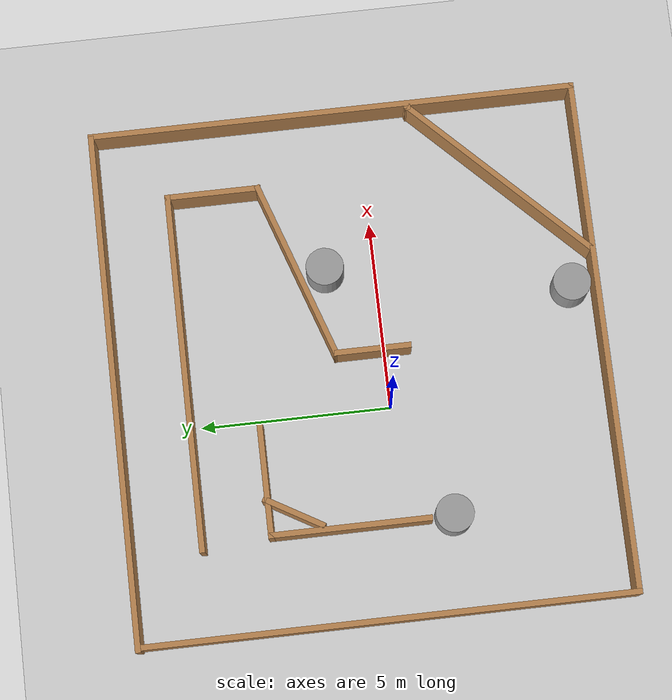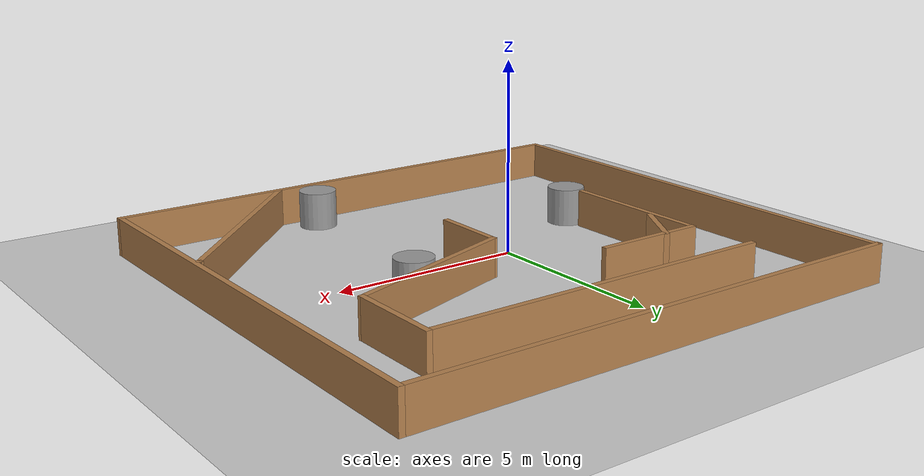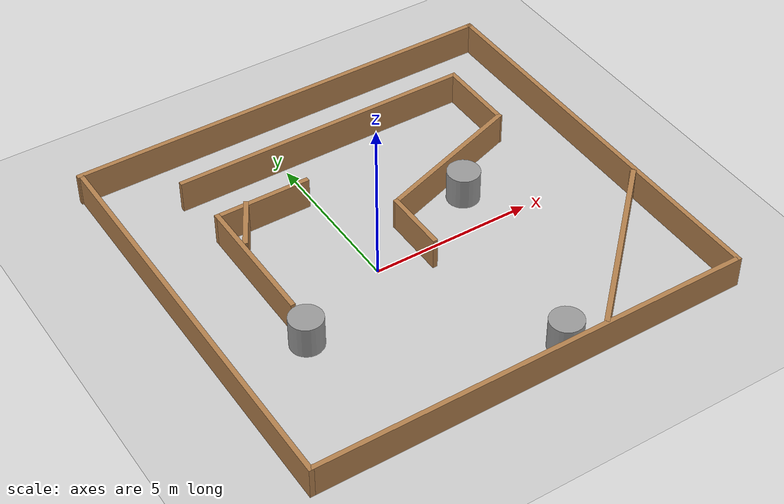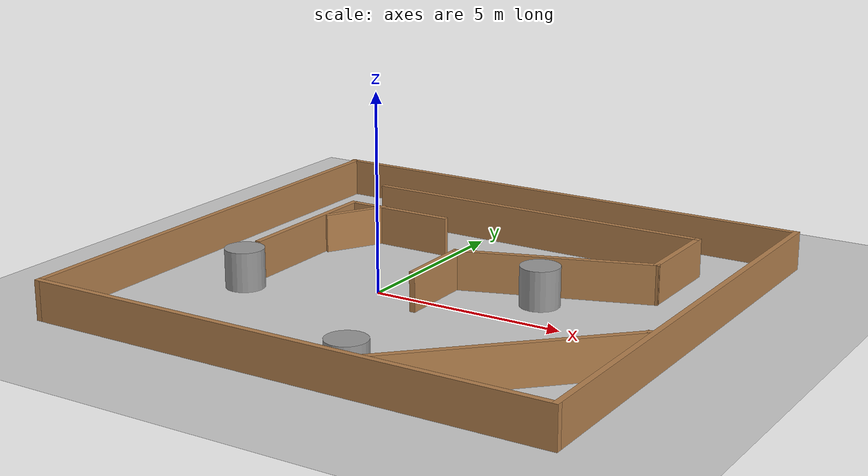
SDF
<sdf version="1.7">
 <world name="default">
  <light name="sun" type="directional">
   <pose>0 0 10 0 -0 0</pose>
   <diffuse>0.8 0.8 0.8 1</diffuse>
   <specular>0.2 0.2 0.2 1</specular>
   <attenuation>
    <range>1000</range>
    <constant>0.9</constant>
    <linear>0.01</linear>
    <quadratic>0.001</quadratic>
   </attenuation>
   <direction>-0.5 0.1 -0.9</direction>
   <spot><inner_angle>0</inner_angle><outer_angle>0</outer_angle><falloff>0</falloff></spot>
  </light>
  <model name="ground_plane">
   <static>1</static>
   <link name="link">
    <collision name="collision">
     <geometry><plane><normal>0 0 1</normal><size>100 100</size></plane></geometry>
     <surface>
      <contact><collide_bitmask>65535</collide_bitmask></contact>
      <friction><ode><mu>100</mu><mu2>50</mu2></ode></friction>
     </surface>
    </collision>
    <visual name="visual">
     <cast_shadows>0</cast_shadows>
     <geometry><plane><normal>0 0 1</normal><size>100 100</size></plane></geometry>
     <material>
      <script><uri>file://media/materials/scripts/gazebo.material</uri><name>Gazebo/Grey</name></script>
     </material>
    </visual>
   </link>
  </model>
  <gravity>0 0 -9.8</gravity>
  <magnetic_field>6e-06 2.3e-05 -4.2e-05</magnetic_field>
  <atmosphere type="adiabatic"/>
  <physics type="ode">
   <max_step_size>0.001</max_step_size>
   <real_time_factor>1</real_time_factor>
   <real_time_update_rate>1000</real_time_update_rate>
  </physics>
  <scene><ambient>0.4 0.4 0.4 1</ambient><background>0.7 0.7 0.7 1</background><shadows>1</shadows></scene>
  <audio><device>default</device></audio>
  <spherical_coordinates>
   <surface_model>EARTH_WGS84</surface_model>
   <latitude_deg>0</latitude_deg>
   <longitude_deg>0</longitude_deg>
   <elevation>0</elevation>
   <heading_deg>0</heading_deg>
  </spherical_coordinates>
  <model name="mac">
   <pose>1.18 0.678 0 0 -0 0</pose>
   <link name="Wall_0">
    <collision name="Wall_0_Collision">
     <geometry><box><size>13 0.15 1</size></box></geometry>
     <pose>0 0 0.5 0 -0 0</pose>
    </collision>
    <visual name="Wall_0_Visual">
     <pose>0 0 0.5 0 -0 0</pose>
     <geometry><box><size>13 0.15 1</size></box></geometry>
     <material>
      <script><uri>file://media/materials/scripts/gazebo.material</uri><name>Gazebo/Wood</name></script>
      <ambient>1 1 1 1</ambient>
     </material>
     <meta><layer>0</layer></meta>
    </visual>
    <pose>6.785 0 0 0 -0 -1.5708</pose>
   </link>
   <link name="Wall_1">
    <collision name="Wall_1_Collision">
     <geometry><box><size>13.674 0.15 1</size></box></geometry>
     <pose>0 0 0.5 0 -0 0</pose>
    </collision>
    <visual name="Wall_1_Visual">
     <pose>0 0 0.5 0 -0 0</pose>
     <geometry><box><size>13.674 0.15 1</size></box></geometry>
     <material>
      <script><uri>file://media/materials/scripts/gazebo.material</uri><name>Gazebo/Wood</name></script>
      <ambient>1 1 1 1</ambient>
     </material>
     <meta><layer>0</layer></meta>
    </visual>
    <pose>0.022999 -6.425 0 0 -0 3.14159</pose>
   </link>
   <link name="Wall_11">
    <collision name="Wall_11_Collision">
     <geometry><box><size>3 0.15 1</size></box></geometry>
     <pose>0 0 0.5 0 -0 0</pose>
    </collision>
    <visual name="Wall_11_Visual">
     <pose>0 0 0.5 0 -0 0</pose>
     <geometry><box><size>3 0.15 1</size></box></geometry>
     <material>
      <script><uri>file://media/materials/scripts/gazebo.material</uri><name>Gazebo/Wood</name></script>
      <ambient>1 1 1 1</ambient>
     </material>
     <meta><layer>0</layer></meta>
    </visual>
    <pose>-2.851 2.766 0 0 -0 3.14159</pose>
   </link>
   <link name="Wall_12">
    <collision name="Wall_12_Collision">
     <geometry><box><size>4.25 0.15 1</size></box></geometry>
     <pose>0 0 0.5 0 -0 0</pose>
    </collision>
    <visual name="Wall_12_Visual">
     <pose>0 0 0.5 0 -0 0</pose>
     <geometry><box><size>4.25 0.15 1</size></box></geometry>
     <material>
      <script><uri>file://media/materials/scripts/gazebo.material</uri><name>Gazebo/Wood</name></script>
      <ambient>1 1 1 1</ambient>
     </material>
     <meta><layer>0</layer></meta>
    </visual>
    <pose>-4.276 0.716 0 0 -0 -1.5708</pose>
   </link>
   <link name="Wall_14">
    <collision name="Wall_14_Collision">
     <geometry><box><size>1.75 0.15 1</size></box></geometry>
     <pose>0 0 0.5 0 -0 0</pose>
    </collision>
    <visual name="Wall_14_Visual">
     <pose>0 0 0.5 0 -0 0</pose>
     <geometry><box><size>1.75 0.15 1</size></box></geometry>
     <material>
      <script><uri>file://media/materials/scripts/gazebo.material</uri><name>Gazebo/Wood</name></script>
      <ambient>1 1 1 1</ambient>
     </material>
     <meta><layer>0</layer></meta>
    </visual>
    <pose>-3.746 2.119 0 0 -0 -2.09428</pose>
   </link>
   <link name="Wall_16">
    <collision name="Wall_16_Collision">
     <geometry><box><size>6.25 0.15 1</size></box></geometry>
     <pose>0 0 0.5 0 -0 0</pose>
    </collision>
    <visual name="Wall_16_Visual">
     <pose>0 0 0.5 0 -0 0</pose>
     <geometry><box><size>6.25 0.15 1</size></box></geometry>
     <material>
      <script><uri>file://media/materials/scripts/gazebo.material</uri><name>Gazebo/Wood</name></script>
      <ambient>1 1 1 1</ambient>
     </material>
     <meta><layer>0</layer></meta>
    </visual>
    <pose>4.5145 -4.1855 0 0 -0 0.785398</pose>
   </link>
   <link name="Wall_17">
    <collision name="Wall_17_Collision">
     <geometry><box><size>0.16 0.15 1</size></box></geometry>
     <pose>0 0 0.5 0 -0 0</pose>
    </collision>
    <visual name="Wall_17_Visual">
     <pose>0 0 0.5 0 -0 0</pose>
     <geometry><box><size>0.16 0.15 1</size></box></geometry>
     <material>
      <script><uri>file://media/materials/scripts/gazebo.material</uri><name>Gazebo/Wood</name></script>
      <ambient>1 1 1 1</ambient>
     </material>
     <meta><layer>0</layer></meta>
    </visual>
    <pose>6.676 -2.029 0 0 -0 0</pose>
   </link>
   <link name="Wall_3">
    <collision name="Wall_3_Collision">
     <geometry><box><size>13.674 0.15 1</size></box></geometry>
     <pose>0 0 0.5 0 -0 0</pose>
    </collision>
    <visual name="Wall_3_Visual">
     <pose>0 0 0.5 0 -0 0</pose>
     <geometry><box><size>13.674 0.15 1</size></box></geometry>
     <material>
      <script><uri>file://media/materials/scripts/gazebo.material</uri><name>Gazebo/Wood</name></script>
      <ambient>1 1 1 1</ambient>
     </material>
     <meta><layer>0</layer></meta>
    </visual>
    <pose>-0.023001 6.425 0 0 -0 3.14159</pose>
   </link>
   <link name="Wall_4">
    <collision name="Wall_4_Collision">
     <geometry><box><size>13 0.15 1</size></box></geometry>
     <pose>0 0 0.5 0 -0 0</pose>
    </collision>
    <visual name="Wall_4_Visual">
     <pose>0 0 0.5 0 -0 0</pose>
     <geometry><box><size>13 0.15 1</size></box></geometry>
     <material>
      <script><uri>file://media/materials/scripts/gazebo.material</uri><name>Gazebo/Wood</name></script>
      <ambient>1 1 1 1</ambient>
     </material>
     <meta><layer>0</layer></meta>
    </visual>
    <pose>-6.739 0 0 0 -0 -1.5708</pose>
   </link>
   <link name="Wall_6">
    <collision name="Wall_6_Collision">
     <geometry><box><size>9.5 0.15 1</size></box></geometry>
     <pose>0 0 0.5 0 -0 0</pose>
    </collision>
    <visual name="Wall_6_Visual">
     <pose>0 0 0.5 0 -0 0</pose>
     <geometry><box><size>9.5 0.15 1</size></box></geometry>
     <material>
      <script><uri>file://media/materials/scripts/gazebo.material</uri><name>Gazebo/Wood</name></script>
      <ambient>1 1 1 1</ambient>
     </material>
     <meta><layer>0</layer></meta>
    </visual>
    <pose>0.230999 4.56 0 0 -0 0</pose>
   </link>
   <link name="Wall_7">
    <collision name="Wall_7_Collision">
     <geometry><box><size>2.54612 0.15 1</size></box></geometry>
     <pose>0 0 0.5 0 -0 0</pose>
    </collision>
    <visual name="Wall_7_Visual">
     <pose>0 0 0.5 0 -0 0</pose>
     <geometry><box><size>2.54612 0.15 1</size></box></geometry>
     <material>
      <script><uri>file://media/materials/scripts/gazebo.material</uri><name>Gazebo/Wood</name></script>
      <ambient>1 1 1 1</ambient>
     </material>
     <meta><layer>0</layer></meta>
    </visual>
    <pose>4.906 3.362 0 0 -0 -1.5708</pose>
   </link>
   <link name="Wall_8">
    <collision name="Wall_8_Collision">
     <geometry><box><size>5.05006 0.15 1</size></box></geometry>
     <pose>0 0 0.5 0 -0 0</pose>
    </collision>
    <visual name="Wall_8_Visual">
     <pose>0 0 0.5 0 -0 0</pose>
     <geometry><box><size>5.05006 0.15 1</size></box></geometry>
     <material>
      <script><uri>file://media/materials/scripts/gazebo.material</uri><name>Gazebo/Wood</name></script>
      <ambient>1 1 1 1</ambient>
     </material>
     <meta><layer>0</layer></meta>
    </visual>
    <pose>2.5865 1.3755 0 0 -0 -2.8139</pose>
   </link>
   <link name="Wall_9">
    <collision name="Wall_9_Collision">
     <geometry><box><size>2.04639 0.15 1</size></box></geometry>
     <pose>0 0 0.5 0 -0 0</pose>
    </collision>
    <visual name="Wall_9_Visual">
     <pose>0 0 0.5 0 -0 0</pose>
     <geometry><box><size>2.04639 0.15 1</size></box></geometry>
     <material>
      <script><uri>file://media/materials/scripts/gazebo.material</uri><name>Gazebo/Wood</name></script>
      <ambient>1 1 1 1</ambient>
     </material>
     <meta><layer>0</layer></meta>
    </visual>
    <pose>0.266999 -0.361 0 0 -0 -1.5708</pose>
   </link>
   <static>1</static>
  </model>
  <model name="unit_cylinder">
   <pose>3.77042 1.31218 0.5 0 -0 0</pose>
   <link name="link">
    <inertial>
     <mass>1</mass>
     <inertia><ixx>0.145833</ixx><ixy>0</ixy><ixz>0</ixz><iyy>0.145833</iyy><iyz>0</iyz><izz>0.125</izz></inertia>
    </inertial>
    <collision name="collision">
     <geometry><cylinder><radius>0.5</radius><length>1</length></cylinder></geometry>
    </collision>
    <visual name="visual">
     <geometry><cylinder><radius>0.5</radius><length>1</length></cylinder></geometry>
     <material>
      <script><name>Gazebo/Grey</name><uri>file://media/materials/scripts/gazebo.material</uri></script>
     </material>
    </visual>
   </link>
  </model>
  <model name="unit_cylinder_0">
   <pose>-3.04938 -1.30995 0.5 0 -0 0</pose>
   <link name="link">
    <inertial>
     <mass>1</mass>
     <inertia><ixx>0.145833</ixx><ixy>0</ixy><ixz>0</ixz><iyy>0.145833</iyy><iyz>0</iyz><izz>0.125</izz></inertia>
    </inertial>
    <collision name="collision">
     <geometry><cylinder><radius>0.5</radius><length>1</length></cylinder></geometry>
    </collision>
    <visual name="visual">
     <geometry><cylinder><radius>0.5</radius><length>1</length></cylinder></geometry>
     <material>
      <script><name>Gazebo/Grey</name><uri>file://media/materials/scripts/gazebo.material</uri></script>
     </material>
    </visual>
   </link>
  </model>
  <model name="unit_cylinder_1">
   <pose>2.64908 -5.08972 0.5 0 -0 0</pose>
   <link name="link">
    <inertial>
     <mass>1</mass>
     <inertia><ixx>0.145833</ixx><ixy>0</ixy><ixz>0</ixz><iyy>0.145833</iyy><iyz>0</iyz><izz>0.125</izz></inertia>
    </inertial>
    <collision name="collision">
     <geometry><cylinder><radius>0.5</radius><length>1</length></cylinder></geometry>
    </collision>
    <visual name="visual">
     <geometry><cylinder><radius>0.5</radius><length>1</length></cylinder></geometry>
     <material>
      <script><name>Gazebo/Grey</name><uri>file://media/materials/scripts/gazebo.material</uri></script>
     </material>
    </visual>
   </link>
  </model>
 </world>
</sdf>
